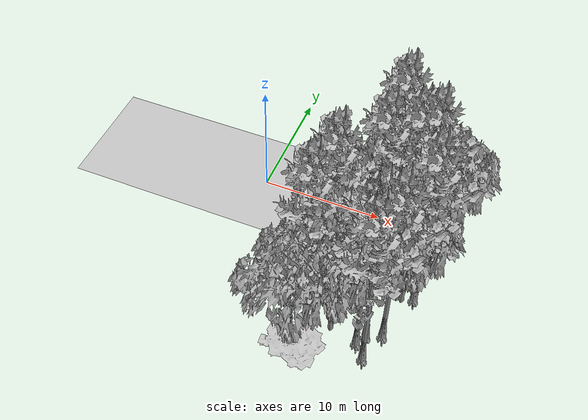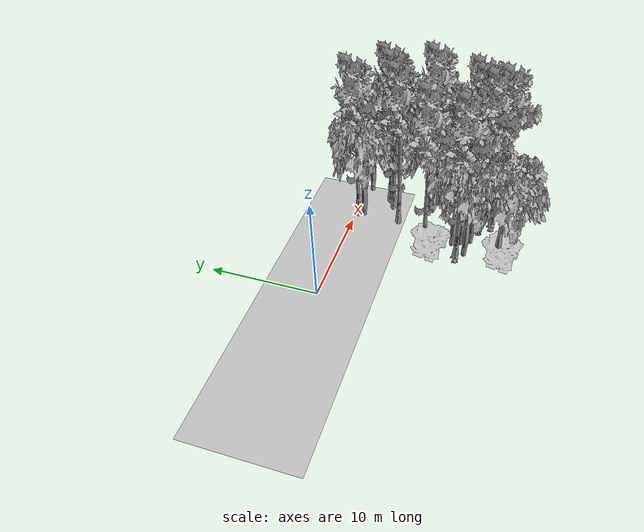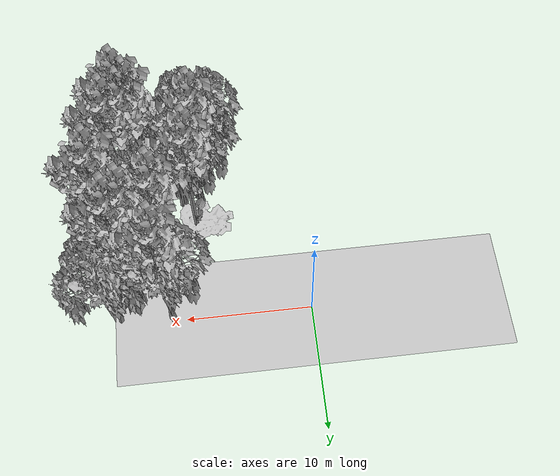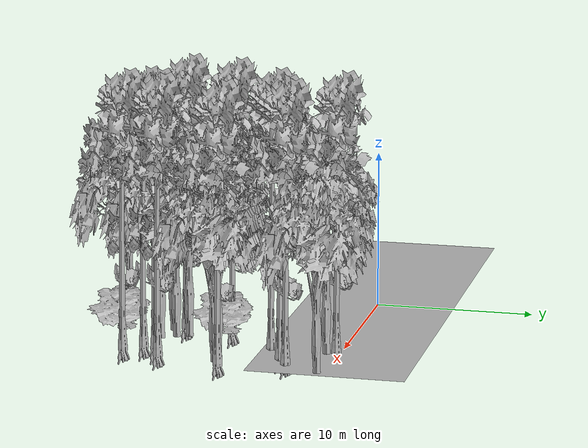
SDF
<sdf version="1.7">
 <world name="default">
  <model name="ground_plane">
   <static>1</static>
   <link name="link">
    <collision name="collision">
     <pose>-50 0 0 0 -0 0</pose>
     <geometry><plane><normal>0 0 1</normal><size>100 100</size></plane></geometry>
     <surface><contact><ode><min_depth>0.01</min_depth><max_vel>0</max_vel></ode></contact></surface>
    </collision>
    <visual name="grass">
     <cast_shadows>0</cast_shadows>
     <geometry>
      <mesh>
       <scale>0.5814285714285714 0.18142857142857144 0.1</scale>
       <uri>file://grass_plane/meshes/grass_plane.dae</uri>
      </mesh>
     </geometry>
    </visual>
   </link>
  </model>
  <model name="Tree 22">
   <static>1</static>
   <pose>8.560986949753492 -7.444285719568318 0 1.57079 -0 0</pose>
   <link name="link">
    <collision name="collision">
     <geometry><mesh><scale>3.5 5 3.5</scale><uri>model://tree_9/meshes/tree_9.obj</uri></mesh></geometry>
    </collision>
    <visual name="visual">
     <geometry><mesh><scale>3.5 5 3.5</scale><uri>model://tree_9/meshes/tree_9.obj</uri></mesh></geometry>
    </visual>
   </link>
  </model>
  <model name="Tree 40">
   <static>1</static>
   <pose>11.061610932866913 -4.341356269984688 0 1.57079 -0 0</pose>
   <link name="link">
    <collision name="collision">
     <geometry><mesh><scale>3.5 5 3.5</scale><uri>model://tree_9/meshes/tree_9.obj</uri></mesh></geometry>
    </collision>
    <visual name="visual">
     <geometry><mesh><scale>3.5 5 3.5</scale><uri>model://tree_9/meshes/tree_9.obj</uri></mesh></geometry>
    </visual>
   </link>
  </model>
  <model name="Tree 45">
   <static>1</static>
   <pose>15.098231038915507 -0.5515677905259757 0 1.57079 -0 0</pose>
   <link name="link">
    <collision name="collision">
     <geometry><mesh><scale>3.5 5 3.5</scale><uri>model://tree_2/meshes/tree_2.obj</uri></mesh></geometry>
    </collision>
    <visual name="visual">
     <geometry><mesh><scale>3.5 5 3.5</scale><uri>model://tree_2/meshes/tree_2.obj</uri></mesh></geometry>
    </visual>
   </link>
  </model>
  <model name="Tree 78">
   <static>1</static>
   <pose>12.44012067134598 -12.04280195409737 0 1.57079 -0 0</pose>
   <link name="link">
    <collision name="collision">
     <geometry><mesh><scale>3.5 5 3.5</scale><uri>model://tree_9/meshes/tree_9.obj</uri></mesh></geometry>
    </collision>
    <visual name="visual">
     <geometry><mesh><scale>3.5 5 3.5</scale><uri>model://tree_9/meshes/tree_9.obj</uri></mesh></geometry>
    </visual>
   </link>
  </model>
  <model name="Tree 100">
   <static>1</static>
   <pose>7.972322488853102 -8.262014247079385 0 1.57079 -0 0</pose>
   <link name="link">
    <collision name="collision">
     <geometry><mesh><scale>3 2 3</scale><uri>model://tree_3/meshes/tree_3.obj</uri></mesh></geometry>
    </collision>
    <visual name="visual">
     <geometry><mesh><scale>3 2 3</scale><uri>model://tree_3/meshes/tree_3.obj</uri></mesh></geometry>
    </visual>
   </link>
  </model>
  <model name="Tree 139">
   <static>1</static>
   <pose>13.305543653086453 -13.112578573134037 0 1.57079 -0 0</pose>
   <link name="link">
    <collision name="collision">
     <geometry><mesh><scale>3.5 5 3.5</scale><uri>model://tree_9/meshes/tree_9.obj</uri></mesh></geometry>
    </collision>
    <visual name="visual">
     <geometry><mesh><scale>3.5 5 3.5</scale><uri>model://tree_9/meshes/tree_9.obj</uri></mesh></geometry>
    </visual>
   </link>
  </model>
  <model name="Tree 148">
   <static>1</static>
   <pose>13.410024661314871 -7.057405192733151 0 1.57079 -0 0</pose>
   <link name="link">
    <collision name="collision">
     <geometry><mesh><scale>3.5 5 3.5</scale><uri>model://tree_2/meshes/tree_2.obj</uri></mesh></geometry>
    </collision>
    <visual name="visual">
     <geometry><mesh><scale>3.5 5 3.5</scale><uri>model://tree_2/meshes/tree_2.obj</uri></mesh></geometry>
    </visual>
   </link>
  </model>
  <model name="Tree 173">
   <static>1</static>
   <pose>9.67470886787477 -10.70825469409753 0 1.57079 -0 0</pose>
   <link name="link">
    <collision name="collision">
     <geometry><mesh><scale>3.5 5 3.5</scale><uri>model://tree_2/meshes/tree_2.obj</uri></mesh></geometry>
    </collision>
    <visual name="visual">
     <geometry><mesh><scale>3.5 5 3.5</scale><uri>model://tree_2/meshes/tree_2.obj</uri></mesh></geometry>
    </visual>
   </link>
  </model>
  <model name="Tree 185">
   <static>1</static>
   <pose>11.080197282879908 -0.2623953746317387 0 1.57079 -0 0</pose>
   <link name="link">
    <collision name="collision">
     <geometry><mesh><scale>3.5 5 3.5</scale><uri>model://tree_9/meshes/tree_9.obj</uri></mesh></geometry>
    </collision>
    <visual name="visual">
     <geometry><mesh><scale>3.5 5 3.5</scale><uri>model://tree_9/meshes/tree_9.obj</uri></mesh></geometry>
    </visual>
   </link>
  </model>
  <model name="Tree 266">
   <static>1</static>
   <pose>8.072033781480954 -10.560383065816577 0 1.57079 -0 0</pose>
   <link name="link">
    <collision name="collision">
     <geometry><mesh><scale>3.5 5 3.5</scale><uri>model://tree_9/meshes/tree_9.obj</uri></mesh></geometry>
    </collision>
    <visual name="visual">
     <geometry><mesh><scale>3.5 5 3.5</scale><uri>model://tree_9/meshes/tree_9.obj</uri></mesh></geometry>
    </visual>
   </link>
  </model>
  <model name="Tree 271">
   <static>1</static>
   <pose>13.838346983604865 -7.086536295199718 0 1.57079 -0 0</pose>
   <link name="link">
    <collision name="collision">
     <geometry><mesh><scale>3.5 5 3.5</scale><uri>model://tree_2/meshes/tree_2.obj</uri></mesh></geometry>
    </collision>
    <visual name="visual">
     <geometry><mesh><scale>3.5 5 3.5</scale><uri>model://tree_2/meshes/tree_2.obj</uri></mesh></geometry>
    </visual>
   </link>
  </model>
  <model name="Tree 282">
   <static>1</static>
   <pose>11.135294884833975 -0.8631921448123894 0 1.57079 -0 0</pose>
   <link name="link">
    <collision name="collision">
     <geometry><mesh><scale>3.5 5 3.5</scale><uri>model://tree_2/meshes/tree_2.obj</uri></mesh></geometry>
    </collision>
    <visual name="visual">
     <geometry><mesh><scale>3.5 5 3.5</scale><uri>model://tree_2/meshes/tree_2.obj</uri></mesh></geometry>
    </visual>
   </link>
  </model>
  <model name="Tree 291">
   <static>1</static>
   <pose>14.028927363436978 -10.694736325965362 0 1.57079 -0 0</pose>
   <link name="link">
    <collision name="collision">
     <geometry><mesh><scale>3.5 5 3.5</scale><uri>model://tree_9/meshes/tree_9.obj</uri></mesh></geometry>
    </collision>
    <visual name="visual">
     <geometry><mesh><scale>3.5 5 3.5</scale><uri>model://tree_9/meshes/tree_9.obj</uri></mesh></geometry>
    </visual>
   </link>
  </model>
  <model name="Tree 300">
   <static>1</static>
   <pose>15.159860373962339 -6.6447406664715185 0 1.57079 -0 0</pose>
   <link name="link">
    <collision name="collision">
     <geometry><mesh><scale>3.5 5 3.5</scale><uri>model://tree_9/meshes/tree_9.obj</uri></mesh></geometry>
    </collision>
    <visual name="visual">
     <geometry><mesh><scale>3.5 5 3.5</scale><uri>model://tree_9/meshes/tree_9.obj</uri></mesh></geometry>
    </visual>
   </link>
  </model>
  <model name="Tree 393">
   <static>1</static>
   <pose>9.36099969563849 -9.964873414871938 0 1.57079 -0 0</pose>
   <link name="link">
    <collision name="collision">
     <geometry><mesh><scale>3.5 5 3.5</scale><uri>model://tree_2/meshes/tree_2.obj</uri></mesh></geometry>
    </collision>
    <visual name="visual">
     <geometry><mesh><scale>3.5 5 3.5</scale><uri>model://tree_2/meshes/tree_2.obj</uri></mesh></geometry>
    </visual>
   </link>
  </model>
  <model name="Tree 412">
   <static>1</static>
   <pose>13.038403392237747 -3.319144576632187 0 1.57079 -0 0</pose>
   <link name="link">
    <collision name="collision">
     <geometry><mesh><scale>3.5 5 3.5</scale><uri>model://tree_9/meshes/tree_9.obj</uri></mesh></geometry>
    </collision>
    <visual name="visual">
     <geometry><mesh><scale>3.5 5 3.5</scale><uri>model://tree_9/meshes/tree_9.obj</uri></mesh></geometry>
    </visual>
   </link>
  </model>
  <model name="Tree 438">
   <static>1</static>
   <pose>13.984982261743532 -2.7421040755233648 0 1.57079 -0 0</pose>
   <link name="link">
    <collision name="collision">
     <geometry><mesh><scale>3.5 5 3.5</scale><uri>model://tree_9/meshes/tree_9.obj</uri></mesh></geometry>
    </collision>
    <visual name="visual">
     <geometry><mesh><scale>3.5 5 3.5</scale><uri>model://tree_9/meshes/tree_9.obj</uri></mesh></geometry>
    </visual>
   </link>
  </model>
  <model name="Tree 481">
   <static>1</static>
   <pose>7.931092866369731 -14.22076213093619 0 1.57079 -0 0</pose>
   <link name="link">
    <collision name="collision">
     <geometry><mesh><scale>3.5 5 3.5</scale><uri>model://tree_2/meshes/tree_2.obj</uri></mesh></geometry>
    </collision>
    <visual name="visual">
     <geometry><mesh><scale>3.5 5 3.5</scale><uri>model://tree_2/meshes/tree_2.obj</uri></mesh></geometry>
    </visual>
   </link>
  </model>
  <model name="Tree 486">
   <static>1</static>
   <pose>10.15241776388308 -11.56830110477739 0 1.57079 -0 0</pose>
   <link name="link">
    <collision name="collision">
     <geometry><mesh><scale>3.5 5 3.5</scale><uri>model://tree_2/meshes/tree_2.obj</uri></mesh></geometry>
    </collision>
    <visual name="visual">
     <geometry><mesh><scale>3.5 5 3.5</scale><uri>model://tree_2/meshes/tree_2.obj</uri></mesh></geometry>
    </visual>
   </link>
  </model>
  <model name="Tree 489">
   <static>1</static>
   <pose>8.428116257635764 -14.783998524288958 0 1.57079 -0 0</pose>
   <link name="link">
    <collision name="collision">
     <geometry><mesh><scale>3 2 3</scale><uri>model://tree_3/meshes/tree_3.obj</uri></mesh></geometry>
    </collision>
    <visual name="visual">
     <geometry><mesh><scale>3 2 3</scale><uri>model://tree_3/meshes/tree_3.obj</uri></mesh></geometry>
    </visual>
   </link>
  </model>
  <model name="Tree 502">
   <static>1</static>
   <pose>8.302656397316518 -11.277318871968626 0 1.57079 -0 0</pose>
   <link name="link">
    <collision name="collision">
     <geometry><mesh><scale>3.5 5 3.5</scale><uri>model://tree_2/meshes/tree_2.obj</uri></mesh></geometry>
    </collision>
    <visual name="visual">
     <geometry><mesh><scale>3.5 5 3.5</scale><uri>model://tree_2/meshes/tree_2.obj</uri></mesh></geometry>
    </visual>
   </link>
  </model>
  <model name="Tree 527">
   <static>1</static>
   <pose>14.222209702150188 -7.093547035284442 0 1.57079 -0 0</pose>
   <link name="link">
    <collision name="collision">
     <geometry><mesh><scale>3.5 5 3.5</scale><uri>model://tree_2/meshes/tree_2.obj</uri></mesh></geometry>
    </collision>
    <visual name="visual">
     <geometry><mesh><scale>3.5 5 3.5</scale><uri>model://tree_2/meshes/tree_2.obj</uri></mesh></geometry>
    </visual>
   </link>
  </model>
  <model name="Tree 535">
   <static>1</static>
   <pose>12.899609532729016 -11.181732894962522 0 1.57079 -0 0</pose>
   <link name="link">
    <collision name="collision">
     <geometry><mesh><scale>3.5 5 3.5</scale><uri>model://tree_9/meshes/tree_9.obj</uri></mesh></geometry>
    </collision>
    <visual name="visual">
     <geometry><mesh><scale>3.5 5 3.5</scale><uri>model://tree_9/meshes/tree_9.obj</uri></mesh></geometry>
    </visual>
   </link>
  </model>
 </world>
</sdf>
